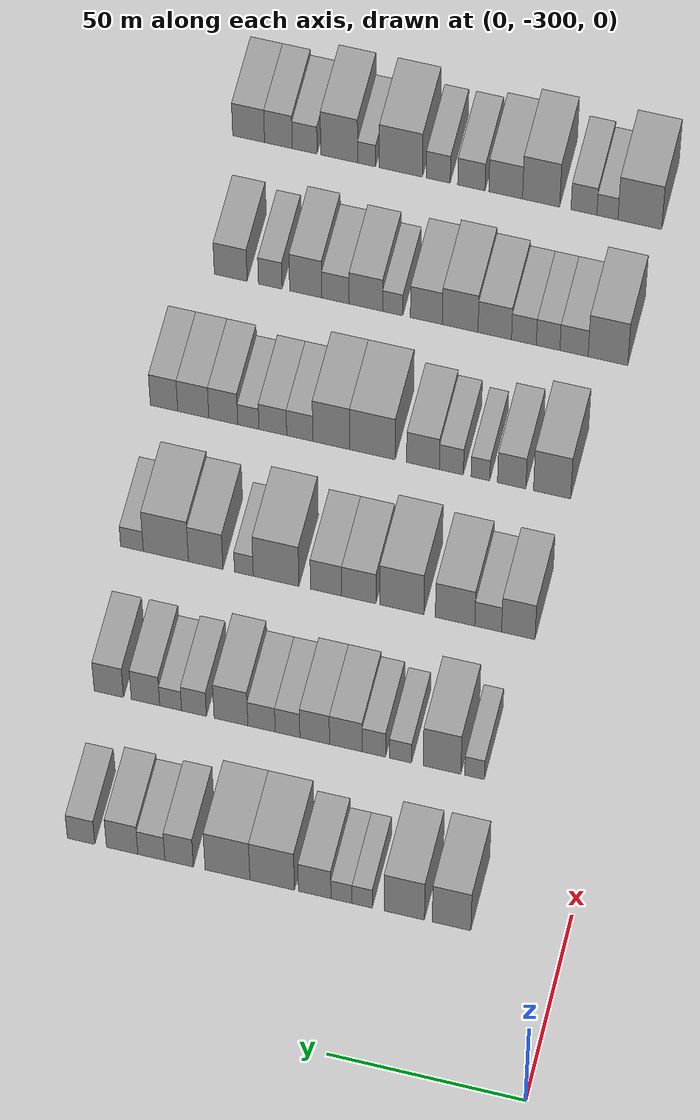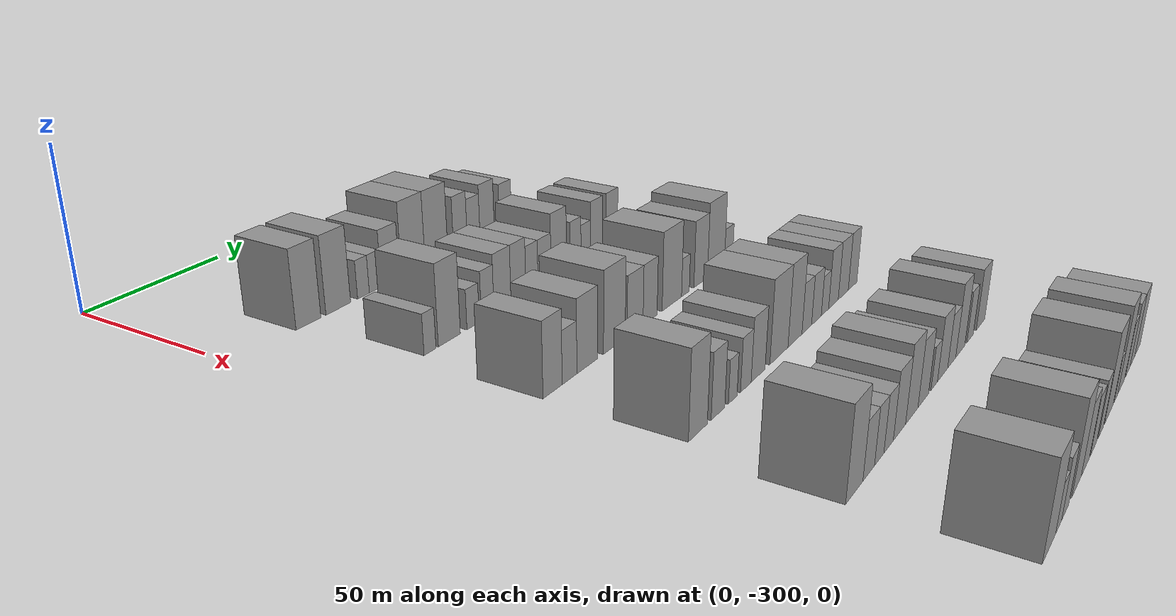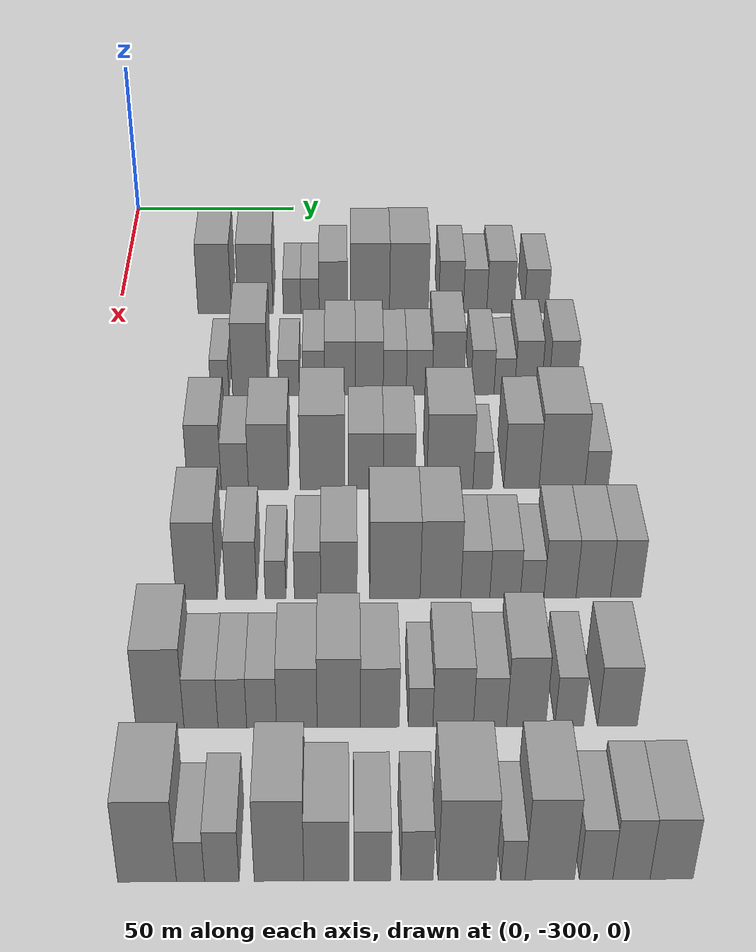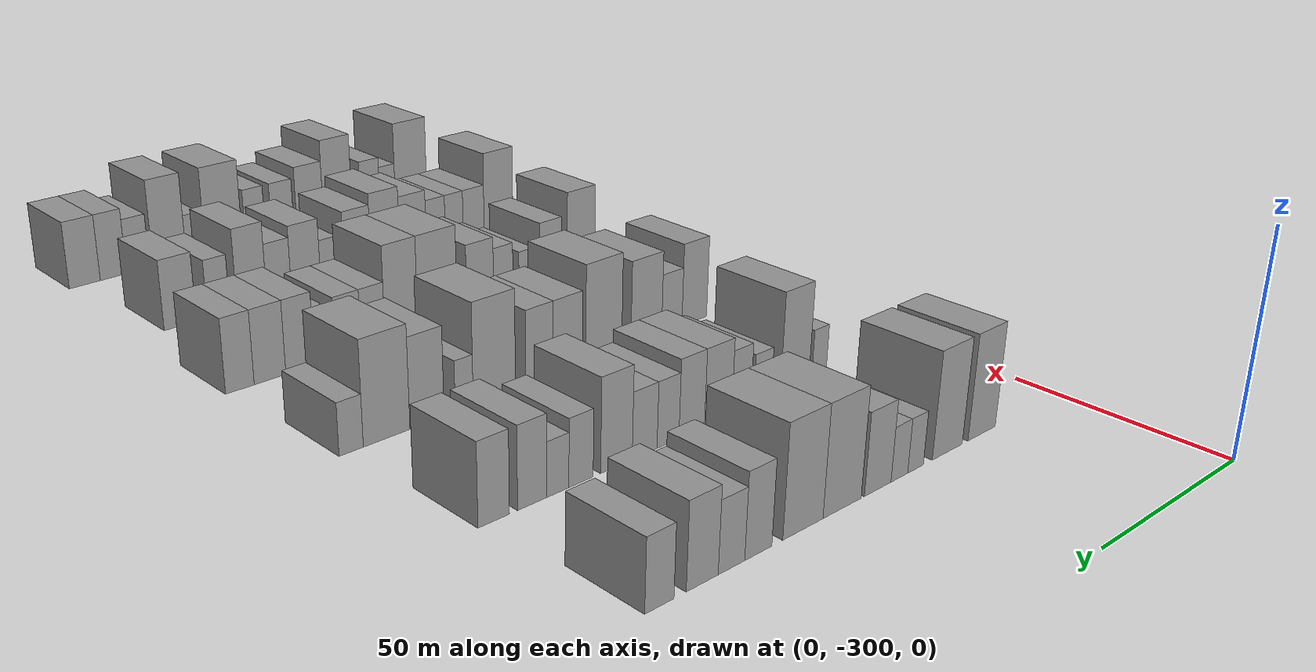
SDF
<sdf version="1.6">
 <world name="default">
  <model name="building_37">
   <static>1</static>
   <pose>50.0000 -271.7772 0 0.000000 0.000000 0.000000</pose>
   <link name="link">
    <pose>0 0 12.00 0 0 0</pose>
    <collision name="collision"><geometry><box><size>20.0000 9.7928 24.0000</size></box></geometry></collision>
    <visual name="visual">
     <cast_shadows>0</cast_shadows>
     <geometry><box><size>20.0000 9.7928 24.0000</size></box></geometry>
     <material>
      <script>
       <uri>model://grey_wall/materials/scripts</uri>
       <uri>model://grey_wall/materials/textures</uri>
       <name>vrc/grey_wall</name>
      </script>
     </material>
    </visual>
   </link>
  </model>
  <model name="building_38">
   <static>1</static>
   <pose>50.0000 -259.7504 0 0.000000 0.000000 0.000000</pose>
   <link name="link">
    <pose>0 0 12.00 0 0 0</pose>
    <collision name="collision"><geometry><box><size>20.0000 10.2608 24.0000</size></box></geometry></collision>
    <visual name="visual">
     <cast_shadows>0</cast_shadows>
     <geometry><box><size>20.0000 10.2608 24.0000</size></box></geometry>
     <material>
      <script>
       <uri>model://grey_wall/materials/scripts</uri>
       <uri>model://grey_wall/materials/textures</uri>
       <name>vrc/grey_wall</name>
      </script>
     </material>
    </visual>
   </link>
  </model>
  <model name="building_39">
   <static>1</static>
   <pose>50.0000 -249.0538 0 0.000000 0.000000 0.000000</pose>
   <link name="link">
    <pose>0 0 6.00 0 0 0</pose>
    <collision name="collision"><geometry><box><size>20.0000 5.1324 12.0000</size></box></geometry></collision>
    <visual name="visual">
     <cast_shadows>0</cast_shadows>
     <geometry><box><size>20.0000 5.1324 12.0000</size></box></geometry>
     <material>
      <script>
       <uri>model://grey_wall/materials/scripts</uri>
       <uri>model://grey_wall/materials/textures</uri>
       <name>vrc/grey_wall</name>
      </script>
     </material>
    </visual>
   </link>
  </model>
  <model name="building_40">
   <static>1</static>
   <pose>50.0000 -243.7974 0 0.000000 0.000000 0.000000</pose>
   <link name="link">
    <pose>0 0 6.00 0 0 0</pose>
    <collision name="collision"><geometry><box><size>20.0000 5.3804 12.0000</size></box></geometry></collision>
    <visual name="visual">
     <cast_shadows>0</cast_shadows>
     <geometry><box><size>20.0000 5.3804 12.0000</size></box></geometry>
     <material>
      <script>
       <uri>model://grey_wall/materials/scripts</uri>
       <uri>model://grey_wall/materials/textures</uri>
       <name>vrc/grey_wall</name>
      </script>
     </material>
    </visual>
   </link>
  </model>
  <model name="building_41">
   <static>1</static>
   <pose>50.0000 -236.9577 0 0.000000 0.000000 0.000000</pose>
   <link name="link">
    <pose>0 0 9.00 0 0 0</pose>
    <collision name="collision"><geometry><box><size>20.0000 8.2990 18.0000</size></box></geometry></collision>
    <visual name="visual">
     <cast_shadows>0</cast_shadows>
     <geometry><box><size>20.0000 8.2990 18.0000</size></box></geometry>
     <material>
      <script>
       <uri>model://grey_wall/materials/scripts</uri>
       <uri>model://grey_wall/materials/textures</uri>
       <name>vrc/grey_wall</name>
      </script>
     </material>
    </visual>
   </link>
  </model>
  <model name="building_42">
   <static>1</static>
   <pose>50.0000 -226.1209 0 0.000000 0.000000 0.000000</pose>
   <link name="link">
    <pose>0 0 12.00 0 0 0</pose>
    <collision name="collision"><geometry><box><size>20.0000 11.3746 24.0000</size></box></geometry></collision>
    <visual name="visual">
     <cast_shadows>0</cast_shadows>
     <geometry><box><size>20.0000 11.3746 24.0000</size></box></geometry>
     <material>
      <script>
       <uri>model://grey_wall/materials/scripts</uri>
       <uri>model://grey_wall/materials/textures</uri>
       <name>vrc/grey_wall</name>
      </script>
     </material>
    </visual>
   </link>
  </model>
  <model name="building_43">
   <static>1</static>
   <pose>50.0000 -214.7128 0 0.000000 0.000000 0.000000</pose>
   <link name="link">
    <pose>0 0 12.00 0 0 0</pose>
    <collision name="collision"><geometry><box><size>20.0000 11.4416 24.0000</size></box></geometry></collision>
    <visual name="visual">
     <cast_shadows>0</cast_shadows>
     <geometry><box><size>20.0000 11.4416 24.0000</size></box></geometry>
     <material>
      <script>
       <uri>model://grey_wall/materials/scripts</uri>
       <uri>model://grey_wall/materials/textures</uri>
       <name>vrc/grey_wall</name>
      </script>
     </material>
    </visual>
   </link>
  </model>
  <model name="building_44">
   <static>1</static>
   <pose>50.0000 -202.3479 0 0.000000 0.000000 0.000000</pose>
   <link name="link">
    <pose>0 0 9.00 0 0 0</pose>
    <collision name="collision"><geometry><box><size>20.0000 7.2882 18.0000</size></box></geometry></collision>
    <visual name="visual">
     <cast_shadows>0</cast_shadows>
     <geometry><box><size>20.0000 7.2882 18.0000</size></box></geometry>
     <material>
      <script>
       <uri>model://grey_wall/materials/scripts</uri>
       <uri>model://grey_wall/materials/textures</uri>
       <name>vrc/grey_wall</name>
      </script>
     </material>
    </visual>
   </link>
  </model>
  <model name="building_45">
   <static>1</static>
   <pose>50.0000 -195.2462 0 0.000000 0.000000 0.000000</pose>
   <link name="link">
    <pose>0 0 7.50 0 0 0</pose>
    <collision name="collision"><geometry><box><size>20.0000 6.9153 15.0000</size></box></geometry></collision>
    <visual name="visual">
     <cast_shadows>0</cast_shadows>
     <geometry><box><size>20.0000 6.9153 15.0000</size></box></geometry>
     <material>
      <script>
       <uri>model://grey_wall/materials/scripts</uri>
       <uri>model://grey_wall/materials/textures</uri>
       <name>vrc/grey_wall</name>
      </script>
     </material>
    </visual>
   </link>
  </model>
  <model name="building_46">
   <static>1</static>
   <pose>50.0000 -187.7663 0 0.000000 0.000000 0.000000</pose>
   <link name="link">
    <pose>0 0 9.00 0 0 0</pose>
    <collision name="collision"><geometry><box><size>20.0000 8.0446 18.0000</size></box></geometry></collision>
    <visual name="visual">
     <cast_shadows>0</cast_shadows>
     <geometry><box><size>20.0000 8.0446 18.0000</size></box></geometry>
     <material>
      <script>
       <uri>model://grey_wall/materials/scripts</uri>
       <uri>model://grey_wall/materials/textures</uri>
       <name>vrc/grey_wall</name>
      </script>
     </material>
    </visual>
   </link>
  </model>
  <model name="building_47">
   <static>1</static>
   <pose>50.0000 -177.2297 0 0.000000 0.000000 0.000000</pose>
   <link name="link">
    <pose>0 0 7.50 0 0 0</pose>
    <collision name="collision"><geometry><box><size>20.0000 7.0285 15.0000</size></box></geometry></collision>
    <visual name="visual">
     <cast_shadows>0</cast_shadows>
     <geometry><box><size>20.0000 7.0285 15.0000</size></box></geometry>
     <material>
      <script>
       <uri>model://grey_wall/materials/scripts</uri>
       <uri>model://grey_wall/materials/textures</uri>
       <name>vrc/grey_wall</name>
      </script>
     </material>
    </visual>
   </link>
  </model>
  <model name="building_176">
   <static>1</static>
   <pose>90.0000 -268.0155 0 0.000000 0.000000 0.000000</pose>
   <link name="link">
    <pose>0 0 6.00 0 0 0</pose>
    <collision name="collision"><geometry><box><size>20.0000 5.0253 12.0000</size></box></geometry></collision>
    <visual name="visual">
     <cast_shadows>0</cast_shadows>
     <geometry><box><size>20.0000 5.0253 12.0000</size></box></geometry>
     <material>
      <script>
       <uri>model://grey_wall/materials/scripts</uri>
       <uri>model://grey_wall/materials/textures</uri>
       <name>vrc/grey_wall</name>
      </script>
     </material>
    </visual>
   </link>
  </model>
  <model name="building_177">
   <static>1</static>
   <pose>90.0000 -259.6808 0 0.000000 0.000000 0.000000</pose>
   <link name="link">
    <pose>0 0 12.00 0 0 0</pose>
    <collision name="collision"><geometry><box><size>20.0000 9.6440 24.0000</size></box></geometry></collision>
    <visual name="visual">
     <cast_shadows>0</cast_shadows>
     <geometry><box><size>20.0000 9.6440 24.0000</size></box></geometry>
     <material>
      <script>
       <uri>model://grey_wall/materials/scripts</uri>
       <uri>model://grey_wall/materials/textures</uri>
       <name>vrc/grey_wall</name>
      </script>
     </material>
    </visual>
   </link>
  </model>
  <model name="building_178">
   <static>1</static>
   <pose>90.0000 -249.0148 0 0.000000 0.000000 0.000000</pose>
   <link name="link">
    <pose>0 0 6.00 0 0 0</pose>
    <collision name="collision"><geometry><box><size>20.0000 5.6881 12.0000</size></box></geometry></collision>
    <visual name="visual">
     <cast_shadows>0</cast_shadows>
     <geometry><box><size>20.0000 5.6881 12.0000</size></box></geometry>
     <material>
      <script>
       <uri>model://grey_wall/materials/scripts</uri>
       <uri>model://grey_wall/materials/textures</uri>
       <name>vrc/grey_wall</name>
      </script>
     </material>
    </visual>
   </link>
  </model>
  <model name="building_179">
   <static>1</static>
   <pose>90.0000 -242.1667 0 0.000000 0.000000 0.000000</pose>
   <link name="link">
    <pose>0 0 7.50 0 0 0</pose>
    <collision name="collision"><geometry><box><size>20.0000 6.0081 15.0000</size></box></geometry></collision>
    <visual name="visual">
     <cast_shadows>0</cast_shadows>
     <geometry><box><size>20.0000 6.0081 15.0000</size></box></geometry>
     <material>
      <script>
       <uri>model://grey_wall/materials/scripts</uri>
       <uri>model://grey_wall/materials/textures</uri>
       <name>vrc/grey_wall</name>
      </script>
     </material>
    </visual>
   </link>
  </model>
  <model name="building_180">
   <static>1</static>
   <pose>90.0000 -234.9711 0 0.000000 0.000000 0.000000</pose>
   <link name="link">
    <pose>0 0 9.00 0 0 0</pose>
    <collision name="collision"><geometry><box><size>20.0000 8.3831 18.0000</size></box></geometry></collision>
    <visual name="visual">
     <cast_shadows>0</cast_shadows>
     <geometry><box><size>20.0000 8.3831 18.0000</size></box></geometry>
     <material>
      <script>
       <uri>model://grey_wall/materials/scripts</uri>
       <uri>model://grey_wall/materials/textures</uri>
       <name>vrc/grey_wall</name>
      </script>
     </material>
    </visual>
   </link>
  </model>
  <model name="building_181">
   <static>1</static>
   <pose>90.0000 -226.9635 0 0.000000 0.000000 0.000000</pose>
   <link name="link">
    <pose>0 0 9.00 0 0 0</pose>
    <collision name="collision"><geometry><box><size>20.0000 7.6319 18.0000</size></box></geometry></collision>
    <visual name="visual">
     <cast_shadows>0</cast_shadows>
     <geometry><box><size>20.0000 7.6319 18.0000</size></box></geometry>
     <material>
      <script>
       <uri>model://grey_wall/materials/scripts</uri>
       <uri>model://grey_wall/materials/textures</uri>
       <name>vrc/grey_wall</name>
      </script>
     </material>
    </visual>
   </link>
  </model>
  <model name="building_182">
   <static>1</static>
   <pose>90.0000 -219.9685 0 0.000000 0.000000 0.000000</pose>
   <link name="link">
    <pose>0 0 7.50 0 0 0</pose>
    <collision name="collision"><geometry><box><size>20.0000 6.3582 15.0000</size></box></geometry></collision>
    <visual name="visual">
     <cast_shadows>0</cast_shadows>
     <geometry><box><size>20.0000 6.3582 15.0000</size></box></geometry>
     <material>
      <script>
       <uri>model://grey_wall/materials/scripts</uri>
       <uri>model://grey_wall/materials/textures</uri>
       <name>vrc/grey_wall</name>
      </script>
     </material>
    </visual>
   </link>
  </model>
  <model name="building_183">
   <static>1</static>
   <pose>90.0000 -213.2649 0 0.000000 0.000000 0.000000</pose>
   <link name="link">
    <pose>0 0 7.50 0 0 0</pose>
    <collision name="collision"><geometry><box><size>20.0000 7.0490 15.0000</size></box></geometry></collision>
    <visual name="visual">
     <cast_shadows>0</cast_shadows>
     <geometry><box><size>20.0000 7.0490 15.0000</size></box></geometry>
     <material>
      <script>
       <uri>model://grey_wall/materials/scripts</uri>
       <uri>model://grey_wall/materials/textures</uri>
       <name>vrc/grey_wall</name>
      </script>
     </material>
    </visual>
   </link>
  </model>
  <model name="building_184">
   <static>1</static>
   <pose>90.0000 -205.4005 0 0.000000 0.000000 0.000000</pose>
   <link name="link">
    <pose>0 0 10.50 0 0 0</pose>
    <collision name="collision"><geometry><box><size>20.0000 8.6797 21.0000</size></box></geometry></collision>
    <visual name="visual">
     <cast_shadows>0</cast_shadows>
     <geometry><box><size>20.0000 8.6797 21.0000</size></box></geometry>
     <material>
      <script>
       <uri>model://grey_wall/materials/scripts</uri>
       <uri>model://grey_wall/materials/textures</uri>
       <name>vrc/grey_wall</name>
      </script>
     </material>
    </visual>
   </link>
  </model>
  <model name="building_185">
   <static>1</static>
   <pose>90.0000 -195.8559 0 0.000000 0.000000 0.000000</pose>
   <link name="link">
    <pose>0 0 7.50 0 0 0</pose>
    <collision name="collision"><geometry><box><size>20.0000 6.4094 15.0000</size></box></geometry></collision>
    <visual name="visual">
     <cast_shadows>0</cast_shadows>
     <geometry><box><size>20.0000 6.4094 15.0000</size></box></geometry>
     <material>
      <script>
       <uri>model://grey_wall/materials/scripts</uri>
       <uri>model://grey_wall/materials/textures</uri>
       <name>vrc/grey_wall</name>
      </script>
     </material>
    </visual>
   </link>
  </model>
  <model name="building_186">
   <static>1</static>
   <pose>90.0000 -189.8173 0 0.000000 0.000000 0.000000</pose>
   <link name="link">
    <pose>0 0 6.00 0 0 0</pose>
    <collision name="collision"><geometry><box><size>20.0000 5.6677 12.0000</size></box></geometry></collision>
    <visual name="visual">
     <cast_shadows>0</cast_shadows>
     <geometry><box><size>20.0000 5.6677 12.0000</size></box></geometry>
     <material>
      <script>
       <uri>model://grey_wall/materials/scripts</uri>
       <uri>model://grey_wall/materials/textures</uri>
       <name>vrc/grey_wall</name>
      </script>
     </material>
    </visual>
   </link>
  </model>
  <model name="building_187">
   <static>1</static>
   <pose>90.0000 -183.3156 0 0.000000 0.000000 0.000000</pose>
   <link name="link">
    <pose>0 0 9.00 0 0 0</pose>
    <collision name="collision"><geometry><box><size>20.0000 7.3358 18.0000</size></box></geometry></collision>
    <visual name="visual">
     <cast_shadows>0</cast_shadows>
     <geometry><box><size>20.0000 7.3358 18.0000</size></box></geometry>
     <material>
      <script>
       <uri>model://grey_wall/materials/scripts</uri>
       <uri>model://grey_wall/materials/textures</uri>
       <name>vrc/grey_wall</name>
      </script>
     </material>
    </visual>
   </link>
  </model>
  <model name="building_188">
   <static>1</static>
   <pose>90.0000 -173.8525 0 0.000000 0.000000 0.000000</pose>
   <link name="link">
    <pose>0 0 9.00 0 0 0</pose>
    <collision name="collision"><geometry><box><size>20.0000 7.5904 18.0000</size></box></geometry></collision>
    <visual name="visual">
     <cast_shadows>0</cast_shadows>
     <geometry><box><size>20.0000 7.5904 18.0000</size></box></geometry>
     <material>
      <script>
       <uri>model://grey_wall/materials/scripts</uri>
       <uri>model://grey_wall/materials/textures</uri>
       <name>vrc/grey_wall</name>
      </script>
     </material>
    </visual>
   </link>
  </model>
  <model name="building_316">
   <static>1</static>
   <pose>130.0000 -269.6959 0 0.000000 0.000000 0.000000</pose>
   <link name="link">
    <pose>0 0 10.50 0 0 0</pose>
    <collision name="collision"><geometry><box><size>20.0000 8.6442 21.0000</size></box></geometry></collision>
    <visual name="visual">
     <cast_shadows>0</cast_shadows>
     <geometry><box><size>20.0000 8.6442 21.0000</size></box></geometry>
     <material>
      <script>
       <uri>model://grey_wall/materials/scripts</uri>
       <uri>model://grey_wall/materials/textures</uri>
       <name>vrc/grey_wall</name>
      </script>
     </material>
    </visual>
   </link>
  </model>
  <model name="building_317">
   <static>1</static>
   <pose>130.0000 -261.9072 0 0.000000 0.000000 0.000000</pose>
   <link name="link">
    <pose>0 0 7.50 0 0 0</pose>
    <collision name="collision"><geometry><box><size>20.0000 6.9333 15.0000</size></box></geometry></collision>
    <visual name="visual">
     <cast_shadows>0</cast_shadows>
     <geometry><box><size>20.0000 6.9333 15.0000</size></box></geometry>
     <material>
      <script>
       <uri>model://grey_wall/materials/scripts</uri>
       <uri>model://grey_wall/materials/textures</uri>
       <name>vrc/grey_wall</name>
      </script>
     </material>
    </visual>
   </link>
  </model>
  <model name="building_318">
   <static>1</static>
   <pose>130.0000 -253.3477 0 0.000000 0.000000 0.000000</pose>
   <link name="link">
    <pose>0 0 10.50 0 0 0</pose>
    <collision name="collision"><geometry><box><size>20.0000 10.1857 21.0000</size></box></geometry></collision>
    <visual name="visual">
     <cast_shadows>0</cast_shadows>
     <geometry><box><size>20.0000 10.1857 21.0000</size></box></geometry>
     <material>
      <script>
       <uri>model://grey_wall/materials/scripts</uri>
       <uri>model://grey_wall/materials/textures</uri>
       <name>vrc/grey_wall</name>
      </script>
     </material>
    </visual>
   </link>
  </model>
  <model name="building_319">
   <static>1</static>
   <pose>130.0000 -239.5448 0 0.000000 0.000000 0.000000</pose>
   <link name="link">
    <pose>0 0 12.00 0 0 0</pose>
    <collision name="collision"><geometry><box><size>20.0000 11.4201 24.0000</size></box></geometry></collision>
    <visual name="visual">
     <cast_shadows>0</cast_shadows>
     <geometry><box><size>20.0000 11.4201 24.0000</size></box></geometry>
     <material>
      <script>
       <uri>model://grey_wall/materials/scripts</uri>
       <uri>model://grey_wall/materials/textures</uri>
       <name>vrc/grey_wall</name>
      </script>
     </material>
    </visual>
   </link>
  </model>
  <model name="building_320">
   <static>1</static>
   <pose>130.0000 -228.4159 0 0.000000 0.000000 0.000000</pose>
   <link name="link">
    <pose>0 0 9.00 0 0 0</pose>
    <collision name="collision"><geometry><box><size>20.0000 8.8376 18.0000</size></box></geometry></collision>
    <visual name="visual">
     <cast_shadows>0</cast_shadows>
     <geometry><box><size>20.0000 8.8376 18.0000</size></box></geometry>
     <material>
      <script>
       <uri>model://grey_wall/materials/scripts</uri>
       <uri>model://grey_wall/materials/textures</uri>
       <name>vrc/grey_wall</name>
      </script>
     </material>
    </visual>
   </link>
  </model>
  <model name="building_321">
   <static>1</static>
   <pose>130.0000 -219.9439 0 0.000000 0.000000 0.000000</pose>
   <link name="link">
    <pose>0 0 9.00 0 0 0</pose>
    <collision name="collision"><geometry><box><size>20.0000 8.1064 18.0000</size></box></geometry></collision>
    <visual name="visual">
     <cast_shadows>0</cast_shadows>
     <geometry><box><size>20.0000 8.1064 18.0000</size></box></geometry>
     <material>
      <script>
       <uri>model://grey_wall/materials/scripts</uri>
       <uri>model://grey_wall/materials/textures</uri>
       <name>vrc/grey_wall</name>
      </script>
     </material>
    </visual>
   </link>
  </model>
  <model name="building_322">
   <static>1</static>
   <pose>130.0000 -206.9504 0 0.000000 0.000000 0.000000</pose>
   <link name="link">
    <pose>0 0 12.00 0 0 0</pose>
    <collision name="collision"><geometry><box><size>20.0000 11.8806 24.0000</size></box></geometry></collision>
    <visual name="visual">
     <cast_shadows>0</cast_shadows>
     <geometry><box><size>20.0000 11.8806 24.0000</size></box></geometry>
     <material>
      <script>
       <uri>model://grey_wall/materials/scripts</uri>
       <uri>model://grey_wall/materials/textures</uri>
       <name>vrc/grey_wall</name>
      </script>
     </material>
    </visual>
   </link>
  </model>
  <model name="building_323">
   <static>1</static>
   <pose>130.0000 -198.5593 0 0.000000 0.000000 0.000000</pose>
   <link name="link">
    <pose>0 0 6.00 0 0 0</pose>
    <collision name="collision"><geometry><box><size>20.0000 4.9016 12.0000</size></box></geometry></collision>
    <visual name="visual">
     <cast_shadows>0</cast_shadows>
     <geometry><box><size>20.0000 4.9016 12.0000</size></box></geometry>
     <material>
      <script>
       <uri>model://grey_wall/materials/scripts</uri>
       <uri>model://grey_wall/materials/textures</uri>
       <name>vrc/grey_wall</name>
      </script>
     </material>
    </visual>
   </link>
  </model>
  <model name="building_324">
   <static>1</static>
   <pose>130.0000 -188.6120 0 0.000000 0.000000 0.000000</pose>
   <link name="link">
    <pose>0 0 10.50 0 0 0</pose>
    <collision name="collision"><geometry><box><size>20.0000 8.9930 21.0000</size></box></geometry></collision>
    <visual name="visual">
     <cast_shadows>0</cast_shadows>
     <geometry><box><size>20.0000 8.9930 21.0000</size></box></geometry>
     <material>
      <script>
       <uri>model://grey_wall/materials/scripts</uri>
       <uri>model://grey_wall/materials/textures</uri>
       <name>vrc/grey_wall</name>
      </script>
     </material>
    </visual>
   </link>
  </model>
  <model name="building_325">
   <static>1</static>
   <pose>130.0000 -178.2309 0 0.000000 0.000000 0.000000</pose>
   <link name="link">
    <pose>0 0 12.00 0 0 0</pose>
    <collision name="collision"><geometry><box><size>20.0000 11.7692 24.0000</size></box></geometry></collision>
    <visual name="visual">
     <cast_shadows>0</cast_shadows>
     <geometry><box><size>20.0000 11.7692 24.0000</size></box></geometry>
     <material>
      <script>
       <uri>model://grey_wall/materials/scripts</uri>
       <uri>model://grey_wall/materials/textures</uri>
       <name>vrc/grey_wall</name>
      </script>
     </material>
    </visual>
   </link>
  </model>
  <model name="building_326">
   <static>1</static>
   <pose>130.0000 -169.3851 0 0.000000 0.000000 0.000000</pose>
   <link name="link">
    <pose>0 0 6.00 0 0 0</pose>
    <collision name="collision"><geometry><box><size>20.0000 5.9225 12.0000</size></box></geometry></collision>
    <visual name="visual">
     <cast_shadows>0</cast_shadows>
     <geometry><box><size>20.0000 5.9225 12.0000</size></box></geometry>
     <material>
      <script>
       <uri>model://grey_wall/materials/scripts</uri>
       <uri>model://grey_wall/materials/textures</uri>
       <name>vrc/grey_wall</name>
      </script>
     </material>
    </visual>
   </link>
  </model>
  <model name="building_455">
   <static>1</static>
   <pose>170.0000 -268.9957 0 0.000000 0.000000 0.000000</pose>
   <link name="link">
    <pose>0 0 12.00 0 0 0</pose>
    <collision name="collision"><geometry><box><size>20.0000 9.6938 24.0000</size></box></geometry></collision>
    <visual name="visual">
     <cast_shadows>0</cast_shadows>
     <geometry><box><size>20.0000 9.6938 24.0000</size></box></geometry>
     <material>
      <script>
       <uri>model://grey_wall/materials/scripts</uri>
       <uri>model://grey_wall/materials/textures</uri>
       <name>vrc/grey_wall</name>
      </script>
     </material>
    </visual>
   </link>
  </model>
  <model name="building_456">
   <static>1</static>
   <pose>170.0000 -258.4519 0 0.000000 0.000000 0.000000</pose>
   <link name="link">
    <pose>0 0 9.00 0 0 0</pose>
    <collision name="collision"><geometry><box><size>20.0000 7.3940 18.0000</size></box></geometry></collision>
    <visual name="visual">
     <cast_shadows>0</cast_shadows>
     <geometry><box><size>20.0000 7.3940 18.0000</size></box></geometry>
     <material>
      <script>
       <uri>model://grey_wall/materials/scripts</uri>
       <uri>model://grey_wall/materials/textures</uri>
       <name>vrc/grey_wall</name>
      </script>
     </material>
    </visual>
   </link>
  </model>
  <model name="building_457">
   <static>1</static>
   <pose>170.0000 -250.3079 0 0.000000 0.000000 0.000000</pose>
   <link name="link">
    <pose>0 0 6.00 0 0 0</pose>
    <collision name="collision"><geometry><box><size>20.0000 4.8940 12.0000</size></box></geometry></collision>
    <visual name="visual">
     <cast_shadows>0</cast_shadows>
     <geometry><box><size>20.0000 4.8940 12.0000</size></box></geometry>
     <material>
      <script>
       <uri>model://grey_wall/materials/scripts</uri>
       <uri>model://grey_wall/materials/textures</uri>
       <name>vrc/grey_wall</name>
      </script>
     </material>
    </visual>
   </link>
  </model>
  <model name="building_458">
   <static>1</static>
   <pose>170.0000 -242.7268 0 0.000000 0.000000 0.000000</pose>
   <link name="link">
    <pose>0 0 7.50 0 0 0</pose>
    <collision name="collision"><geometry><box><size>20.0000 6.2682 15.0000</size></box></geometry></collision>
    <visual name="visual">
     <cast_shadows>0</cast_shadows>
     <geometry><box><size>20.0000 6.2682 15.0000</size></box></geometry>
     <material>
      <script>
       <uri>model://grey_wall/materials/scripts</uri>
       <uri>model://grey_wall/materials/textures</uri>
       <name>vrc/grey_wall</name>
      </script>
     </material>
    </visual>
   </link>
  </model>
  <model name="building_459">
   <static>1</static>
   <pose>170.0000 -235.3195 0 0.000000 0.000000 0.000000</pose>
   <link name="link">
    <pose>0 0 9.00 0 0 0</pose>
    <collision name="collision"><geometry><box><size>20.0000 8.5463 18.0000</size></box></geometry></collision>
    <visual name="visual">
     <cast_shadows>0</cast_shadows>
     <geometry><box><size>20.0000 8.5463 18.0000</size></box></geometry>
     <material>
      <script>
       <uri>model://grey_wall/materials/scripts</uri>
       <uri>model://grey_wall/materials/textures</uri>
       <name>vrc/grey_wall</name>
      </script>
     </material>
    </visual>
   </link>
  </model>
  <model name="building_460">
   <static>1</static>
   <pose>170.0000 -222.0948 0 0.000000 0.000000 0.000000</pose>
   <link name="link">
    <pose>0 0 12.00 0 0 0</pose>
    <collision name="collision"><geometry><box><size>20.0000 11.9031 24.0000</size></box></geometry></collision>
    <visual name="visual">
     <cast_shadows>0</cast_shadows>
     <geometry><box><size>20.0000 11.9031 24.0000</size></box></geometry>
     <material>
      <script>
       <uri>model://grey_wall/materials/scripts</uri>
       <uri>model://grey_wall/materials/textures</uri>
       <name>vrc/grey_wall</name>
      </script>
     </material>
    </visual>
   </link>
  </model>
  <model name="building_461">
   <static>1</static>
   <pose>170.0000 -211.3213 0 0.000000 0.000000 0.000000</pose>
   <link name="link">
    <pose>0 0 12.00 0 0 0</pose>
    <collision name="collision"><geometry><box><size>20.0000 9.6440 24.0000</size></box></geometry></collision>
    <visual name="visual">
     <cast_shadows>0</cast_shadows>
     <geometry><box><size>20.0000 9.6440 24.0000</size></box></geometry>
     <material>
      <script>
       <uri>model://grey_wall/materials/scripts</uri>
       <uri>model://grey_wall/materials/textures</uri>
       <name>vrc/grey_wall</name>
      </script>
     </material>
    </visual>
   </link>
  </model>
  <model name="building_462">
   <static>1</static>
   <pose>170.0000 -203.0589 0 0.000000 0.000000 0.000000</pose>
   <link name="link">
    <pose>0 0 7.50 0 0 0</pose>
    <collision name="collision"><geometry><box><size>20.0000 6.8807 15.0000</size></box></geometry></collision>
    <visual name="visual">
     <cast_shadows>0</cast_shadows>
     <geometry><box><size>20.0000 6.8807 15.0000</size></box></geometry>
     <material>
      <script>
       <uri>model://grey_wall/materials/scripts</uri>
       <uri>model://grey_wall/materials/textures</uri>
       <name>vrc/grey_wall</name>
      </script>
     </material>
    </visual>
   </link>
  </model>
  <model name="building_463">
   <static>1</static>
   <pose>170.0000 -195.9875 0 0.000000 0.000000 0.000000</pose>
   <link name="link">
    <pose>0 0 7.50 0 0 0</pose>
    <collision name="collision"><geometry><box><size>20.0000 7.2621 15.0000</size></box></geometry></collision>
    <visual name="visual">
     <cast_shadows>0</cast_shadows>
     <geometry><box><size>20.0000 7.2621 15.0000</size></box></geometry>
     <material>
      <script>
       <uri>model://grey_wall/materials/scripts</uri>
       <uri>model://grey_wall/materials/textures</uri>
       <name>vrc/grey_wall</name>
      </script>
     </material>
    </visual>
   </link>
  </model>
  <model name="building_464">
   <static>1</static>
   <pose>170.0000 -189.5682 0 0.000000 0.000000 0.000000</pose>
   <link name="link">
    <pose>0 0 6.00 0 0 0</pose>
    <collision name="collision"><geometry><box><size>20.0000 5.5766 12.0000</size></box></geometry></collision>
    <visual name="visual">
     <cast_shadows>0</cast_shadows>
     <geometry><box><size>20.0000 5.5766 12.0000</size></box></geometry>
     <material>
      <script>
       <uri>model://grey_wall/materials/scripts</uri>
       <uri>model://grey_wall/materials/textures</uri>
       <name>vrc/grey_wall</name>
      </script>
     </material>
    </visual>
   </link>
  </model>
  <model name="building_465">
   <static>1</static>
   <pose>170.0000 -182.9762 0 0.000000 0.000000 0.000000</pose>
   <link name="link">
    <pose>0 0 9.00 0 0 0</pose>
    <collision name="collision"><geometry><box><size>20.0000 7.6073 18.0000</size></box></geometry></collision>
    <visual name="visual">
     <cast_shadows>0</cast_shadows>
     <geometry><box><size>20.0000 7.6073 18.0000</size></box></geometry>
     <material>
      <script>
       <uri>model://grey_wall/materials/scripts</uri>
       <uri>model://grey_wall/materials/textures</uri>
       <name>vrc/grey_wall</name>
      </script>
     </material>
    </visual>
   </link>
  </model>
  <model name="building_466">
   <static>1</static>
   <pose>170.0000 -175.0838 0 0.000000 0.000000 0.000000</pose>
   <link name="link">
    <pose>0 0 9.00 0 0 0</pose>
    <collision name="collision"><geometry><box><size>20.0000 8.1775 18.0000</size></box></geometry></collision>
    <visual name="visual">
     <cast_shadows>0</cast_shadows>
     <geometry><box><size>20.0000 8.1775 18.0000</size></box></geometry>
     <material>
      <script>
       <uri>model://grey_wall/materials/scripts</uri>
       <uri>model://grey_wall/materials/textures</uri>
       <name>vrc/grey_wall</name>
      </script>
     </material>
    </visual>
   </link>
  </model>
  <model name="building_467">
   <static>1</static>
   <pose>170.0000 -167.3872 0 0.000000 0.000000 0.000000</pose>
   <link name="link">
    <pose>0 0 9.00 0 0 0</pose>
    <collision name="collision"><geometry><box><size>20.0000 7.2156 18.0000</size></box></geometry></collision>
    <visual name="visual">
     <cast_shadows>0</cast_shadows>
     <geometry><box><size>20.0000 7.2156 18.0000</size></box></geometry>
     <material>
      <script>
       <uri>model://grey_wall/materials/scripts</uri>
       <uri>model://grey_wall/materials/textures</uri>
       <name>vrc/grey_wall</name>
      </script>
     </material>
    </visual>
   </link>
  </model>
  <model name="building_581">
   <static>1</static>
   <pose>210.0000 -274.2478 0 0.000000 0.000000 0.000000</pose>
   <link name="link">
    <pose>0 0 12.00 0 0 0</pose>
    <collision name="collision"><geometry><box><size>20.0000 10.4386 24.0000</size></box></geometry></collision>
    <visual name="visual">
     <cast_shadows>0</cast_shadows>
     <geometry><box><size>20.0000 10.4386 24.0000</size></box></geometry>
     <material>
      <script>
       <uri>model://grey_wall/materials/scripts</uri>
       <uri>model://grey_wall/materials/textures</uri>
       <name>vrc/grey_wall</name>
      </script>
     </material>
    </visual>
   </link>
  </model>
  <model name="building_582">
   <static>1</static>
   <pose>210.0000 -265.3279 0 0.000000 0.000000 0.000000</pose>
   <link name="link">
    <pose>0 0 7.50 0 0 0</pose>
    <collision name="collision"><geometry><box><size>20.0000 7.4011 15.0000</size></box></geometry></collision>
    <visual name="visual">
     <cast_shadows>0</cast_shadows>
     <geometry><box><size>20.0000 7.4011 15.0000</size></box></geometry>
     <material>
      <script>
       <uri>model://grey_wall/materials/scripts</uri>
       <uri>model://grey_wall/materials/textures</uri>
       <name>vrc/grey_wall</name>
      </script>
     </material>
    </visual>
   </link>
  </model>
  <model name="building_583">
   <static>1</static>
   <pose>210.0000 -258.5129 0 0.000000 0.000000 0.000000</pose>
   <link name="link">
    <pose>0 0 7.50 0 0 0</pose>
    <collision name="collision"><geometry><box><size>20.0000 6.2289 15.0000</size></box></geometry></collision>
    <visual name="visual">
     <cast_shadows>0</cast_shadows>
     <geometry><box><size>20.0000 6.2289 15.0000</size></box></geometry>
     <material>
      <script>
       <uri>model://grey_wall/materials/scripts</uri>
       <uri>model://grey_wall/materials/textures</uri>
       <name>vrc/grey_wall</name>
      </script>
     </material>
    </visual>
   </link>
  </model>
  <model name="building_584">
   <static>1</static>
   <pose>210.0000 -252.1480 0 0.000000 0.000000 0.000000</pose>
   <link name="link">
    <pose>0 0 7.50 0 0 0</pose>
    <collision name="collision"><geometry><box><size>20.0000 6.5010 15.0000</size></box></geometry></collision>
    <visual name="visual">
     <cast_shadows>0</cast_shadows>
     <geometry><box><size>20.0000 6.5010 15.0000</size></box></geometry>
     <material>
      <script>
       <uri>model://grey_wall/materials/scripts</uri>
       <uri>model://grey_wall/materials/textures</uri>
       <name>vrc/grey_wall</name>
      </script>
     </material>
    </visual>
   </link>
  </model>
  <model name="building_585">
   <static>1</static>
   <pose>210.0000 -244.4890 0 0.000000 0.000000 0.000000</pose>
   <link name="link">
    <pose>0 0 9.00 0 0 0</pose>
    <collision name="collision"><geometry><box><size>20.0000 8.8171 18.0000</size></box></geometry></collision>
    <visual name="visual">
     <cast_shadows>0</cast_shadows>
     <geometry><box><size>20.0000 8.8171 18.0000</size></box></geometry>
     <material>
      <script>
       <uri>model://grey_wall/materials/scripts</uri>
       <uri>model://grey_wall/materials/textures</uri>
       <name>vrc/grey_wall</name>
      </script>
     </material>
    </visual>
   </link>
  </model>
  <model name="building_586">
   <static>1</static>
   <pose>210.0000 -235.3846 0 0.000000 0.000000 0.000000</pose>
   <link name="link">
    <pose>0 0 10.50 0 0 0</pose>
    <collision name="collision"><geometry><box><size>20.0000 9.3918 21.0000</size></box></geometry></collision>
    <visual name="visual">
     <cast_shadows>0</cast_shadows>
     <geometry><box><size>20.0000 9.3918 21.0000</size></box></geometry>
     <material>
      <script>
       <uri>model://grey_wall/materials/scripts</uri>
       <uri>model://grey_wall/materials/textures</uri>
       <name>vrc/grey_wall</name>
      </script>
     </material>
    </visual>
   </link>
  </model>
  <model name="building_587">
   <static>1</static>
   <pose>210.0000 -226.4770 0 0.000000 0.000000 0.000000</pose>
   <link name="link">
    <pose>0 0 9.00 0 0 0</pose>
    <collision name="collision"><geometry><box><size>20.0000 8.4232 18.0000</size></box></geometry></collision>
    <visual name="visual">
     <cast_shadows>0</cast_shadows>
     <geometry><box><size>20.0000 8.4232 18.0000</size></box></geometry>
     <material>
      <script>
       <uri>model://grey_wall/materials/scripts</uri>
       <uri>model://grey_wall/materials/textures</uri>
       <name>vrc/grey_wall</name>
      </script>
     </material>
    </visual>
   </link>
  </model>
  <model name="building_588">
   <static>1</static>
   <pose>210.0000 -217.5975 0 0.000000 0.000000 0.000000</pose>
   <link name="link">
    <pose>0 0 6.00 0 0 0</pose>
    <collision name="collision"><geometry><box><size>20.0000 5.3358 12.0000</size></box></geometry></collision>
    <visual name="visual">
     <cast_shadows>0</cast_shadows>
     <geometry><box><size>20.0000 5.3358 12.0000</size></box></geometry>
     <material>
      <script>
       <uri>model://grey_wall/materials/scripts</uri>
       <uri>model://grey_wall/materials/textures</uri>
       <name>vrc/grey_wall</name>
      </script>
     </material>
    </visual>
   </link>
  </model>
  <model name="building_589">
   <static>1</static>
   <pose>210.0000 -210.5162 0 0.000000 0.000000 0.000000</pose>
   <link name="link">
    <pose>0 0 9.00 0 0 0</pose>
    <collision name="collision"><geometry><box><size>20.0000 8.8270 18.0000</size></box></geometry></collision>
    <visual name="visual">
     <cast_shadows>0</cast_shadows>
     <geometry><box><size>20.0000 8.8270 18.0000</size></box></geometry>
     <material>
      <script>
       <uri>model://grey_wall/materials/scripts</uri>
       <uri>model://grey_wall/materials/textures</uri>
       <name>vrc/grey_wall</name>
      </script>
     </material>
    </visual>
   </link>
  </model>
  <model name="building_590">
   <static>1</static>
   <pose>210.0000 -202.4877 0 0.000000 0.000000 0.000000</pose>
   <link name="link">
    <pose>0 0 7.50 0 0 0</pose>
    <collision name="collision"><geometry><box><size>20.0000 7.2301 15.0000</size></box></geometry></collision>
    <visual name="visual">
     <cast_shadows>0</cast_shadows>
     <geometry><box><size>20.0000 7.2301 15.0000</size></box></geometry>
     <material>
      <script>
       <uri>model://grey_wall/materials/scripts</uri>
       <uri>model://grey_wall/materials/textures</uri>
       <name>vrc/grey_wall</name>
      </script>
     </material>
    </visual>
   </link>
  </model>
  <model name="building_591">
   <static>1</static>
   <pose>210.0000 -194.6105 0 0.000000 0.000000 0.000000</pose>
   <link name="link">
    <pose>0 0 10.50 0 0 0</pose>
    <collision name="collision"><geometry><box><size>20.0000 8.5243 21.0000</size></box></geometry></collision>
    <visual name="visual">
     <cast_shadows>0</cast_shadows>
     <geometry><box><size>20.0000 8.5243 21.0000</size></box></geometry>
     <material>
      <script>
       <uri>model://grey_wall/materials/scripts</uri>
       <uri>model://grey_wall/materials/textures</uri>
       <name>vrc/grey_wall</name>
      </script>
     </material>
    </visual>
   </link>
  </model>
  <model name="building_592">
   <static>1</static>
   <pose>210.0000 -185.2105 0 0.000000 0.000000 0.000000</pose>
   <link name="link">
    <pose>0 0 7.50 0 0 0</pose>
    <collision name="collision"><geometry><box><size>20.0000 6.2756 15.0000</size></box></geometry></collision>
    <visual name="visual">
     <cast_shadows>0</cast_shadows>
     <geometry><box><size>20.0000 6.2756 15.0000</size></box></geometry>
     <material>
      <script>
       <uri>model://grey_wall/materials/scripts</uri>
       <uri>model://grey_wall/materials/textures</uri>
       <name>vrc/grey_wall</name>
      </script>
     </material>
    </visual>
   </link>
  </model>
  <model name="building_593">
   <static>1</static>
   <pose>210.0000 -174.7388 0 0.000000 0.000000 0.000000</pose>
   <link name="link">
    <pose>0 0 9.00 0 0 0</pose>
    <collision name="collision"><geometry><box><size>20.0000 8.6678 18.0000</size></box></geometry></collision>
    <visual name="visual">
     <cast_shadows>0</cast_shadows>
     <geometry><box><size>20.0000 8.6678 18.0000</size></box></geometry>
     <material>
      <script>
       <uri>model://grey_wall/materials/scripts</uri>
       <uri>model://grey_wall/materials/textures</uri>
       <name>vrc/grey_wall</name>
      </script>
     </material>
    </visual>
   </link>
  </model>
  <model name="building_720">
   <static>1</static>
   <pose>250.0000 -273.4031 0 0.000000 0.000000 0.000000</pose>
   <link name="link">
    <pose>0 0 12.00 0 0 0</pose>
    <collision name="collision"><geometry><box><size>20.0000 11.6273 24.0000</size></box></geometry></collision>
    <visual name="visual">
     <cast_shadows>0</cast_shadows>
     <geometry><box><size>20.0000 11.6273 24.0000</size></box></geometry>
     <material>
      <script>
       <uri>model://grey_wall/materials/scripts</uri>
       <uri>model://grey_wall/materials/textures</uri>
       <name>vrc/grey_wall</name>
      </script>
     </material>
    </visual>
   </link>
  </model>
  <model name="building_721">
   <static>1</static>
   <pose>250.0000 -264.8031 0 0.000000 0.000000 0.000000</pose>
   <link name="link">
    <pose>0 0 6.00 0 0 0</pose>
    <collision name="collision"><geometry><box><size>20.0000 5.5727 12.0000</size></box></geometry></collision>
    <visual name="visual">
     <cast_shadows>0</cast_shadows>
     <geometry><box><size>20.0000 5.5727 12.0000</size></box></geometry>
     <material>
      <script>
       <uri>model://grey_wall/materials/scripts</uri>
       <uri>model://grey_wall/materials/textures</uri>
       <name>vrc/grey_wall</name>
      </script>
     </material>
    </visual>
   </link>
  </model>
  <model name="building_722">
   <static>1</static>
   <pose>250.0000 -258.5931 0 0.000000 0.000000 0.000000</pose>
   <link name="link">
    <pose>0 0 7.50 0 0 0</pose>
    <collision name="collision"><geometry><box><size>20.0000 6.8474 15.0000</size></box></geometry></collision>
    <visual name="visual">
     <cast_shadows>0</cast_shadows>
     <geometry><box><size>20.0000 6.8474 15.0000</size></box></geometry>
     <material>
      <script>
       <uri>model://grey_wall/materials/scripts</uri>
       <uri>model://grey_wall/materials/textures</uri>
       <name>vrc/grey_wall</name>
      </script>
     </material>
    </visual>
   </link>
  </model>
  <model name="building_723">
   <static>1</static>
   <pose>250.0000 -247.2334 0 0.000000 0.000000 0.000000</pose>
   <link name="link">
    <pose>0 0 12.00 0 0 0</pose>
    <collision name="collision"><geometry><box><size>20.0000 9.8719 24.0000</size></box></geometry></collision>
    <visual name="visual">
     <cast_shadows>0</cast_shadows>
     <geometry><box><size>20.0000 9.8719 24.0000</size></box></geometry>
     <material>
      <script>
       <uri>model://grey_wall/materials/scripts</uri>
       <uri>model://grey_wall/materials/textures</uri>
       <name>vrc/grey_wall</name>
      </script>
     </material>
    </visual>
   </link>
  </model>
  <model name="building_724">
   <static>1</static>
   <pose>250.0000 -237.8223 0 0.000000 0.000000 0.000000</pose>
   <link name="link">
    <pose>0 0 9.00 0 0 0</pose>
    <collision name="collision"><geometry><box><size>20.0000 8.9504 18.0000</size></box></geometry></collision>
    <visual name="visual">
     <cast_shadows>0</cast_shadows>
     <geometry><box><size>20.0000 8.9504 18.0000</size></box></geometry>
     <material>
      <script>
       <uri>model://grey_wall/materials/scripts</uri>
       <uri>model://grey_wall/materials/textures</uri>
       <name>vrc/grey_wall</name>
      </script>
     </material>
    </visual>
   </link>
  </model>
  <model name="building_725">
   <static>1</static>
   <pose>250.0000 -228.7200 0 0.000000 0.000000 0.000000</pose>
   <link name="link">
    <pose>0 0 7.50 0 0 0</pose>
    <collision name="collision"><geometry><box><size>20.0000 7.2542 15.0000</size></box></geometry></collision>
    <visual name="visual">
     <cast_shadows>0</cast_shadows>
     <geometry><box><size>20.0000 7.2542 15.0000</size></box></geometry>
     <material>
      <script>
       <uri>model://grey_wall/materials/scripts</uri>
       <uri>model://grey_wall/materials/textures</uri>
       <name>vrc/grey_wall</name>
      </script>
     </material>
    </visual>
   </link>
  </model>
  <model name="building_726">
   <static>1</static>
   <pose>250.0000 -219.8981 0 0.000000 0.000000 0.000000</pose>
   <link name="link">
    <pose>0 0 7.50 0 0 0</pose>
    <collision name="collision"><geometry><box><size>20.0000 6.3898 15.0000</size></box></geometry></collision>
    <visual name="visual">
     <cast_shadows>0</cast_shadows>
     <geometry><box><size>20.0000 6.3898 15.0000</size></box></geometry>
     <material>
      <script>
       <uri>model://grey_wall/materials/scripts</uri>
       <uri>model://grey_wall/materials/textures</uri>
       <name>vrc/grey_wall</name>
      </script>
     </material>
    </visual>
   </link>
  </model>
  <model name="building_727">
   <static>1</static>
   <pose>250.0000 -209.9752 0 0.000000 0.000000 0.000000</pose>
   <link name="link">
    <pose>0 0 12.00 0 0 0</pose>
    <collision name="collision"><geometry><box><size>20.0000 11.4561 24.0000</size></box></geometry></collision>
    <visual name="visual">
     <cast_shadows>0</cast_shadows>
     <geometry><box><size>20.0000 11.4561 24.0000</size></box></geometry>
     <material>
      <script>
       <uri>model://grey_wall/materials/scripts</uri>
       <uri>model://grey_wall/materials/textures</uri>
       <name>vrc/grey_wall</name>
      </script>
     </material>
    </visual>
   </link>
  </model>
  <model name="building_728">
   <static>1</static>
   <pose>250.0000 -200.8313 0 0.000000 0.000000 0.000000</pose>
   <link name="link">
    <pose>0 0 6.00 0 0 0</pose>
    <collision name="collision"><geometry><box><size>20.0000 4.8316 12.0000</size></box></geometry></collision>
    <visual name="visual">
     <cast_shadows>0</cast_shadows>
     <geometry><box><size>20.0000 4.8316 12.0000</size></box></geometry>
     <material>
      <script>
       <uri>model://grey_wall/materials/scripts</uri>
       <uri>model://grey_wall/materials/textures</uri>
       <name>vrc/grey_wall</name>
      </script>
     </material>
    </visual>
   </link>
  </model>
  <model name="building_729">
   <static>1</static>
   <pose>250.0000 -193.5125 0 0.000000 0.000000 0.000000</pose>
   <link name="link">
    <pose>0 0 12.00 0 0 0</pose>
    <collision name="collision"><geometry><box><size>20.0000 9.8061 24.0000</size></box></geometry></collision>
    <visual name="visual">
     <cast_shadows>0</cast_shadows>
     <geometry><box><size>20.0000 9.8061 24.0000</size></box></geometry>
     <material>
      <script>
       <uri>model://grey_wall/materials/scripts</uri>
       <uri>model://grey_wall/materials/textures</uri>
       <name>vrc/grey_wall</name>
      </script>
     </material>
    </visual>
   </link>
  </model>
  <model name="building_730">
   <static>1</static>
   <pose>250.0000 -184.2977 0 0.000000 0.000000 0.000000</pose>
   <link name="link">
    <pose>0 0 7.50 0 0 0</pose>
    <collision name="collision"><geometry><box><size>20.0000 6.6236 15.0000</size></box></geometry></collision>
    <visual name="visual">
     <cast_shadows>0</cast_shadows>
     <geometry><box><size>20.0000 6.6236 15.0000</size></box></geometry>
     <material>
      <script>
       <uri>model://grey_wall/materials/scripts</uri>
       <uri>model://grey_wall/materials/textures</uri>
       <name>vrc/grey_wall</name>
      </script>
     </material>
    </visual>
   </link>
  </model>
  <model name="building_731">
   <static>1</static>
   <pose>250.0000 -177.2860 0 0.000000 0.000000 0.000000</pose>
   <link name="link">
    <pose>0 0 9.00 0 0 0</pose>
    <collision name="collision"><geometry><box><size>20.0000 7.3997 18.0000</size></box></geometry></collision>
    <visual name="visual">
     <cast_shadows>0</cast_shadows>
     <geometry><box><size>20.0000 7.3997 18.0000</size></box></geometry>
     <material>
      <script>
       <uri>model://grey_wall/materials/scripts</uri>
       <uri>model://grey_wall/materials/textures</uri>
       <name>vrc/grey_wall</name>
      </script>
     </material>
    </visual>
   </link>
  </model>
  <model name="building_732">
   <static>1</static>
   <pose>250.0000 -169.3216 0 0.000000 0.000000 0.000000</pose>
   <link name="link">
    <pose>0 0 9.00 0 0 0</pose>
    <collision name="collision"><geometry><box><size>20.0000 8.5292 18.0000</size></box></geometry></collision>
    <visual name="visual">
     <cast_shadows>0</cast_shadows>
     <geometry><box><size>20.0000 8.5292 18.0000</size></box></geometry>
     <material>
      <script>
       <uri>model://grey_wall/materials/scripts</uri>
       <uri>model://grey_wall/materials/textures</uri>
       <name>vrc/grey_wall</name>
      </script>
     </material>
    </visual>
   </link>
  </model>
 </world>
</sdf>
